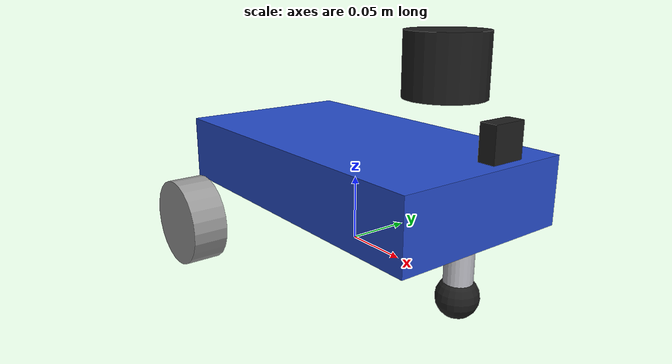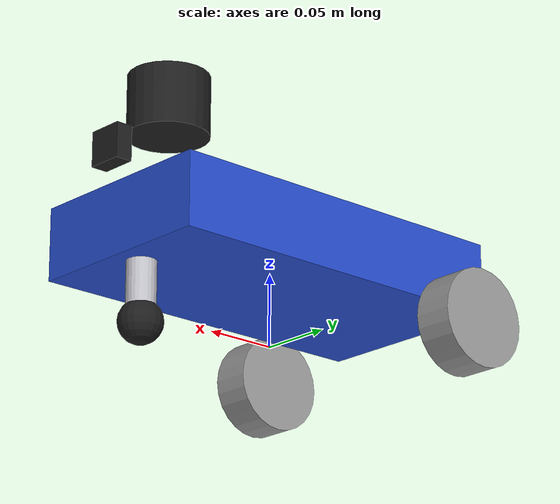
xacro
<?xml version="1.0"?>
<robot xmlns:xacro="http://www.ros.org/wiki/xacro" name="my_robot">
    <xacro:property name="base_length" value="0.257" />
    <xacro:property name="base_width" value="0.14" />
    <xacro:property name="base_height" value="0.05" />
    <xacro:property name="wheel_radius" value="0.0335" />
    <xacro:property name="wheel_length" value="0.027" />
    <xacro:property name="base_mass" value="1.0" />
    <xacro:property name="wheel_mass" value="0.3" />
  <xacro:property name="caster_mass" value="0.1" />

    <!-- Caster wheel properties -->
    <xacro:property name="caster_radius" value="0.015" />
    <xacro:property name="caster_length" value="0.04" />
    <xacro:property name="caster_offset_x" value="${(base_length/2 -0.02)}" />
<xacro:property name="caster_offset_z" value="${-caster_length/2}" />

  <!-- Wheel macro -->
  <xacro:macro name="wheel" params="prefix reflect side">
    <link name="${prefix}_wheel">
      <visual>
        <geometry>
          <cylinder radius="${wheel_radius}" length="${wheel_length}"/>
        </geometry>
        <origin xyz="0 0 0" rpy="${pi/2} 0 0"/>
        <material name="grey"/>
      </visual>
      <collision>
        <geometry>
          <cylinder radius="${wheel_radius}" length="${wheel_length}"/>
        </geometry>
        <origin xyz="0 0 0" rpy="${pi/2} 0 0"/>
      </collision>
      <xacro:cylinder_inertia m="${wheel_mass}" r="${wheel_radius}" l="${wheel_length}" o_xyz="0 0 0" o_rpy="${pi/2} 0 0"/>
    </link>

    <joint name="${prefix}_wheel_joint" type="continuous">
      <parent link="base_link"/>
      <child link="${prefix}_wheel"/>
      <origin xyz="${side*(-0.085)} ${reflect*(base_width/2 + wheel_length/2 + + 0.015)} -0.0215" rpy="0 0 0"/>
      <axis xyz="0 1 0"/>
      <limit effort="100" velocity="100"/>
    </joint>
  </xacro:macro>

   <!-- Caster wheel macro -->
    <xacro:macro name="caster_wheel" params="prefix">
        <!-- Caster wheel link -->
        <link name="${prefix}_caster_wheel">
            <visual>
                <geometry>
                    <sphere radius="${caster_radius}"/>
                </geometry>
                <origin xyz="0 0 0" rpy="0 0 0"/>
                <material name="black"/>
            </visual>
            <collision>
                <geometry>
                    <sphere radius="${caster_radius}"/>
                </geometry>
                <origin xyz="0 0 0" rpy="0 0 0"/>
            </collision>
            <xacro:sphere_inertia m="${caster_mass}" r="${caster_radius}" o_xyz="0 0 0" o_rpy="0 0 0"/>
        </link>

        <!-- Caster base link (optional mounting point) -->
        <link name="${prefix}_caster_base">
            <visual>
                <geometry>
                    <cylinder radius="0.01" length="${caster_length}"/>
                </geometry>
                <origin xyz="0 0 0" rpy="0 0 0"/>
                <material name="silver"/>
            </visual>
            <xacro:cylinder_inertia m="0.01" r="0.01" l="${caster_length}" o_xyz="0 0 0" o_rpy="${pi/2} 0 0"/>
        </link>

        <!-- Joint from base to caster base -->
        <joint name="${prefix}_caster_base_joint" type="fixed">
            <parent link="base_link"/>
            <child link="${prefix}_caster_base"/>
            <origin xyz="${caster_offset_x} 0 ${caster_offset_z}" rpy="0 0 0"/>
        </joint>

        <!-- Joint from caster base to caster wheel (free rotation) -->
        <joint name="${prefix}_caster_wheel_joint" type="fixed">
            <parent link="${prefix}_caster_base"/>
            <child link="${prefix}_caster_wheel"/>
            <origin xyz="0 0 -${caster_length/2}" rpy="0 0 0"/>
            <axis xyz="0 0 1"/>
        </joint>
    </xacro:macro>

<link name="base_footprint"/>

  <!-- Base link -->
  <link name="base_link">
    <visual>
      <geometry>
        <box size="${base_length} ${base_width} ${base_height}"/>
      </geometry>
      <origin xyz="0 0 ${base_height/2}" rpy="0 0 0"/>
      <material name="blue"/>
    </visual>
    <collision>
      <geometry>
        <box size="${base_length} ${base_width} ${base_height}"/>
      </geometry>
      <origin xyz="0 0 ${base_height/2}" rpy="0 0 0"/>
    </collision>
    <xacro:box_inertia m="${base_mass}" x="${base_length}" y="${base_width}" z="${base_height}" o_xyz="0 0 ${base_height/2}" o_rpy="0 0 0"/>
  </link>

 <!-- Base footprint to base link transform -->
  <joint name="base_footprint_joint" type="fixed">
    <parent link="base_footprint"/>
    <child link="base_link"/>
    <origin xyz="0 0 ${wheel_radius}" rpy="0 0 0"/>
  </joint>

  <xacro:wheel prefix="left" reflect="-1"  side="1"/>
  <xacro:wheel prefix="right" reflect="1"  side="1"/>
<!-- Create caster wheel at the front -->
    <xacro:caster_wheel prefix="front"/>

<!-- Laser sensor -->
  <link name="laser">
    <visual>
      <geometry>
        <cylinder length="0.042" radius="0.0275"/>
      </geometry>
      <material name="black"/>
    </visual>
    <collision>
      <geometry>
        <cylinder length="0.042" radius="0.0275"/>
      </geometry>
    </collision>
    <xacro:cylinder_inertia m="0.1" r="0.0275" l="0.042" o_xyz="0 0 0" o_rpy="0 0 0"/>

  </link>

  <joint name="laser_joint" type="fixed">
    <parent link="base_link"/>
    <child link="laser"/>
    <!-- Lidar raised 4 cm above its previous mount to make room for the camera below it.
         z = base_height + half-cylinder + 0.04 = 0.05 + 0.021 + 0.04 = 0.111 m -->
    <origin xyz="${base_length/2 - 0.04} 0 ${base_height + 0.061}" rpy="0 0 3.1416"/>
  </joint>

  <!-- Camera (Raspberry Pi Camera Module 3 Wide / IMX708) -->
  <xacro:property name="camera_depth"  value="0.012"/>  <!-- x: lens-axis thickness -->
  <xacro:property name="camera_width"  value="0.025"/>  <!-- y: board width        -->
  <xacro:property name="camera_height" value="0.024"/>  <!-- z: board height       -->

  <link name="camera_link">
    <visual>
      <geometry>
        <box size="${camera_depth} ${camera_width} ${camera_height}"/>
      </geometry>
      <material name="black"/>
    </visual>
    <collision>
      <geometry>
        <box size="${camera_depth} ${camera_width} ${camera_height}"/>
      </geometry>
    </collision>
    <xacro:box_inertia m="0.01" x="${camera_depth}" y="${camera_width}" z="${camera_height}" o_xyz="0 0 0" o_rpy="0 0 0"/>
  </link>

  <joint name="camera_joint" type="fixed">
    <parent link="base_link"/>
    <child link="camera_link"/>
    <!-- x: rear face of camera body flush with chassis front (base_length/2 + camera_depth/2)
         z: 4 cm below the lidar centre (= the previous lidar mount height = base_height + 0.021) -->
    <origin xyz="${base_length/2 + camera_depth/2} 0 ${base_height + 0.021}" rpy="0 0 0"/>
  </joint>

  <!-- Standard ROS optical frame (REP-103: z forward, x right, y down).
       Use camera_optical_link as the frame_id for sensor_msgs/Image and CameraInfo. -->
  <link name="camera_optical_link"/>

  <joint name="camera_optical_joint" type="fixed">
    <parent link="camera_link"/>
    <child link="camera_optical_link"/>
    <origin xyz="0 0 0" rpy="${-pi/2} 0 ${-pi/2}"/>
  </joint>

  <link name="imu_link"/>

<joint name="base_link_to_imu" type="fixed">
  <parent link="base_link"/>
  <child link="imu_link"/>

  <!-- Position of IMU relative to base_link (meters) -->
  <origin xyz="0.03 0.00 0.01" rpy="0 0 0"/>
</joint>

</robot>
